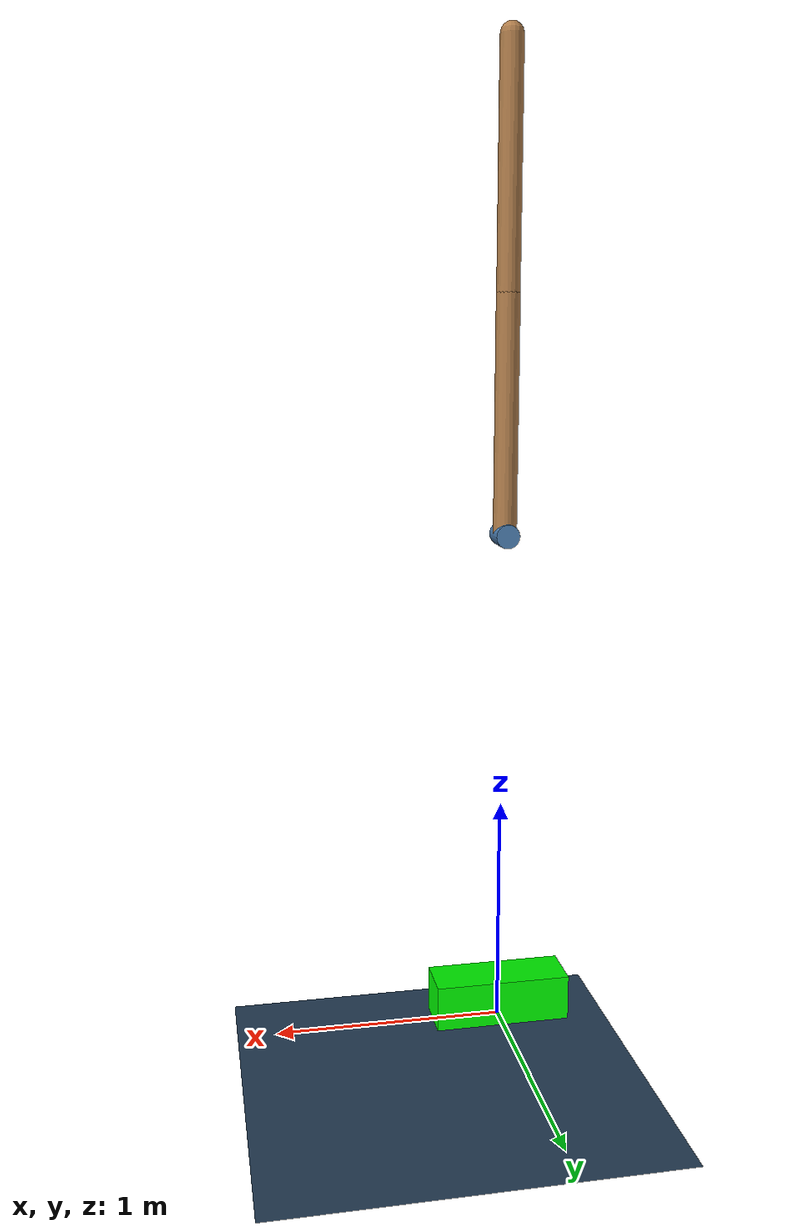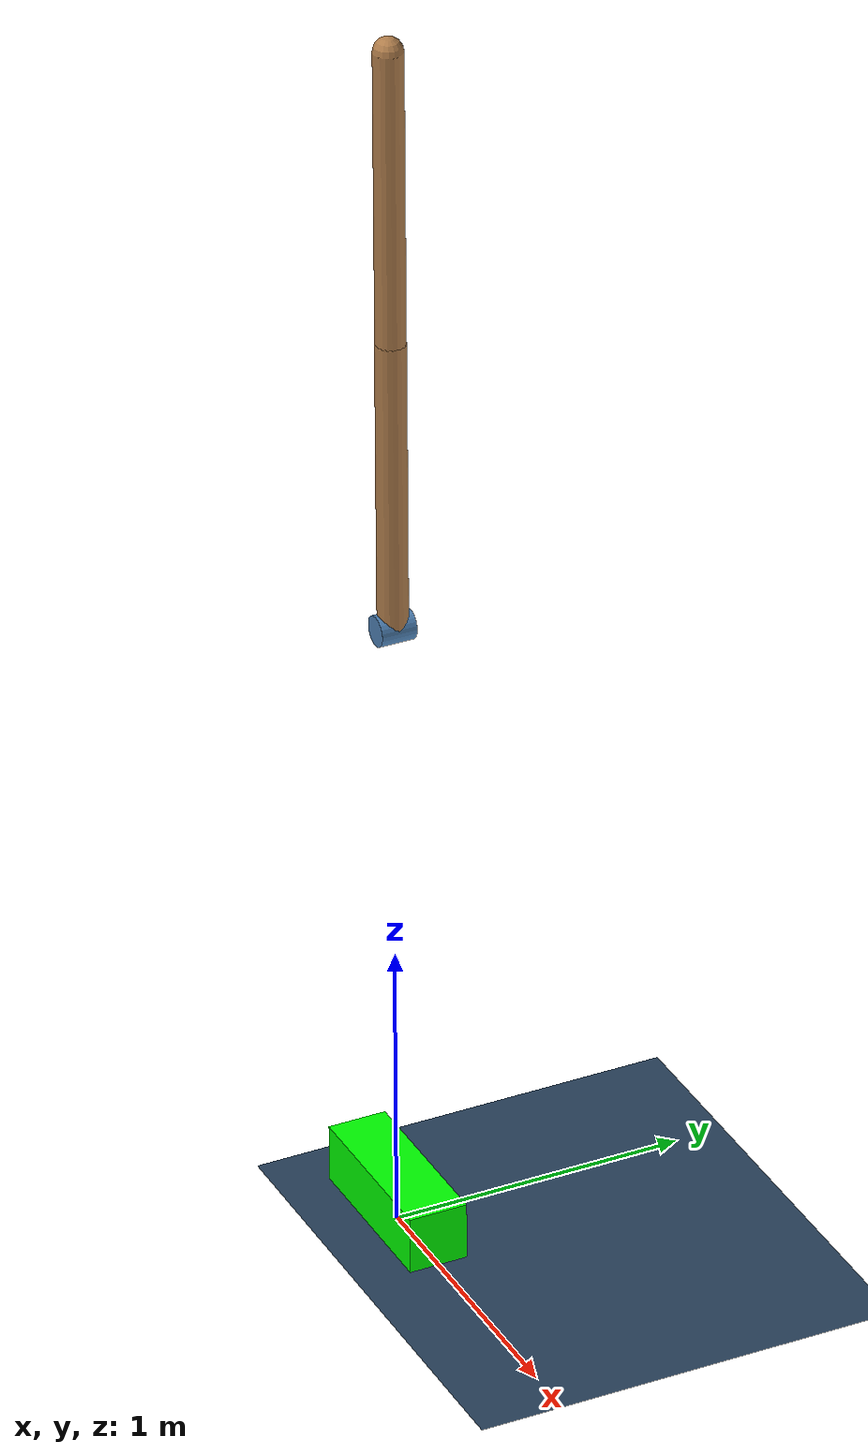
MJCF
<mujoco model="articulated_contact">

    <default>
        <joint damping=".05"/>
        <geom type="capsule" mass="1"/>
    </default>

    <asset>
        <!-- Define materials -->
        <material name="block_mat" rgba="0.2 0.2 0.8 0.5"/>
        <material name="rod_color" rgba="0.8 0.2 0.1 1"/>
        <material name="goal_green" rgba="0 1 0 1"/>
        <texture name="grid" type="2d" builtin="checker" rgb1=".1 .2 .3" rgb2=".2 .3 .4" width="300" height="300" mark="edge" markrgb=".2 .3 .4"/>
        <material name="grid" texture="grid" texrepeat="1 1" texuniform="true" reflectance=".2"/>
        <material name="decoration" rgba=".3 .5 .7 1"/>
        <material name="self" rgba=".7 .5 .3 1"/>-->
    </asset>

    <worldbody>
        <light name="light" pos="0 0 6"/>
        <geom name="floor" size="3 3 .2" type="plane" material="grid" conaffinity="7"/>
        <body name="upper_arm" pos="0 0 2.2">
            <joint name="shoulder" type="hinge" axis="0 1 0"/>
            <geom name="upper_arm_decoration" material="decoration" type="cylinder" fromto="0 -.06 0 0 .06 0" size="0.051" mass="0.1"/> <!-- material="decoration" -->
            <geom name="upper_arm" fromto="0 0 0 0 0 1" size="0.05" material="self" solimp = "0 0.99 0.001 0.5 0.2" solref = "0.06 0.8"/>
            <body name="lower_arm" pos="0 0 1">
                <joint name="elbow" type="hinge" axis="0 1 0"/>
                <geom name="lower_arm" fromto="0 0 0 0 0 1" size="0.049" material="self" solimp = "0 0.99 0.001 0.5 0.2" solref = "0.06 0.8"/>
                <site name="tip" pos="0 0 1" size="0.01"/>
            </body>
        </body>

        <body name="goal" pos = "0 0 0.1">
            <geom type = "box" size="0.3 0.1 0.1" mass="0.5" material="goal_green" solimp = "0 0.99 0.001 0.5 0.2" solref = "0.06 0.8" condim="1" margin = "0.001" contype = "3" conaffinity = "3"/>
            <joint type="free" />
        </body>
    </worldbody>

    <actuator>
        <!-- Actuator for pendubot -->
        <motor name="elbow" joint="elbow" ctrllimited="true" ctrlrange="-1 1" gear = "20"/>
    </actuator>
</mujoco>
